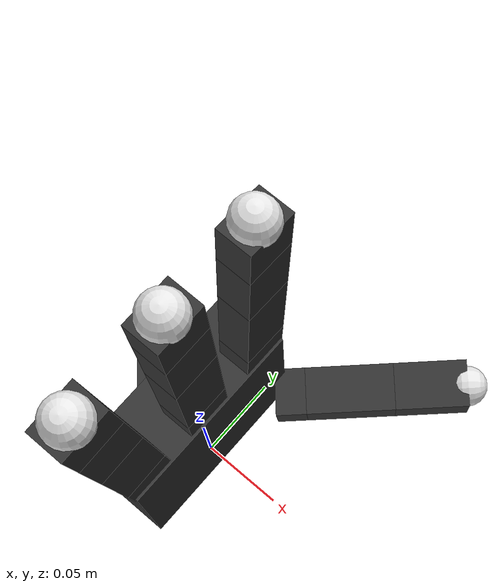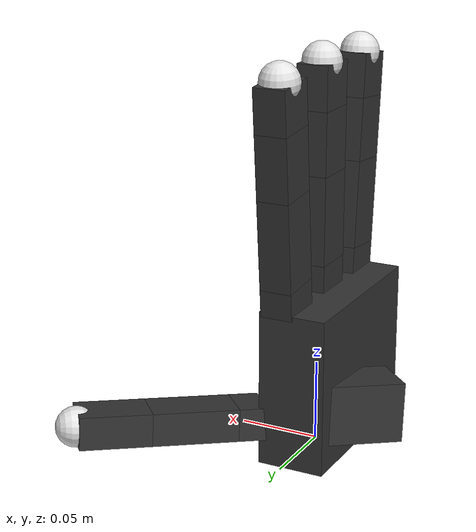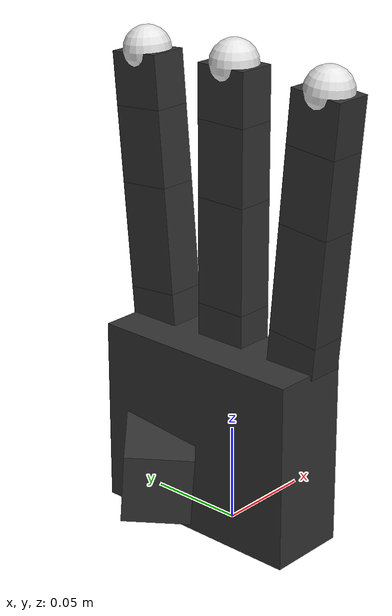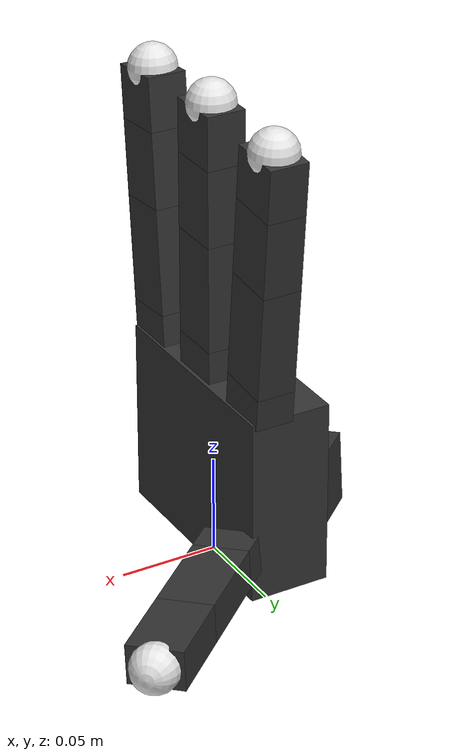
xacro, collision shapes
<?xml version="1.0"?>
<robot name="ahand" xmlns:xacro="http://ros.org/wiki/xacro">

  <link name="world">
    <origin xyz="0 0 0"/>
  </link>
  <xacro:include filename="$(find allegro_hand_description)/allegro_hand_description_right_melodic_franka.urdf.xacro"/>
  <xacro:allegro_hand_robot parent_link="world" xyz="0 0 0.1" rpy="0 0 0"/>

</robot>

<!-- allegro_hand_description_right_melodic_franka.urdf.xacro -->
<!-- |    This document was autogenerated by xacro from allegro_hand_description_right.xacro | -->
<!-- |    EDITING THIS FILE BY HAND IS NOT RECOMMENDED                                 | -->
<robot xmlns:xacro="http://www.ros.org/wiki/xacro" name="allegro_hand_right">
  <!-- ======================== BASE PARAMS ========================= -->
  <!-- ======================== FINGER PARAMS ======================== -->
  <!-- full height from joint to tip. when used,
    the radius of the finger tip sphere will be subtracted
    and one fixed link will be added for the tip. -->
  <!-- ========================= THUMB PARAMS ========================= -->
  <!-- ========================= LIMITS ========================= -->
 <xacro:macro name="allegro_hand_robot" params="parent_link xyz rpy">

  <joint name="base_joint" type="fixed">
      <parent link="${parent_link}"/>
      <child link="palm_link"/>
      <origin xyz="${xyz}" rpy="${rpy}"/>
  </joint>

  <link name="palm_link">
    <visual>
      <geometry>
        <mesh filename="package://allegro_hand_description/meshes/base_link.STL"/>
      </geometry>
      <origin rpy="0 0 0" xyz="0 0 0 "/>
      <material name="black">
        <color rgba="0.2 0.2 0.2 1"/>
      </material>
    </visual>
    <collision>
      <origin rpy="0 0 0" xyz="-0.009300 0 -0.0475"/>
      <geometry>
        <box size="0.0408 0.1130 0.095"/>
      </geometry>
    </collision>
    <inertial>
      <origin rpy="0 0 0" xyz="0 0 0.0475"/>
      <mass value="0.4154"/>
      <inertia ixx="1e-4" ixy="0.0" ixz="0.0" iyy="1e-4" iyz="0.0" izz="1e-4"/>
    </inertial>
  </link>
  <!-- FINGERS -->
  <!-- RIGHT HAND due to which finger is number 0 -->
  <!-- for LEFT HAND switch the sign of the **offset_origin_y** and **finger_angle_r** parameters-->

  <!-- Little finger -->
  <!-- [LINK 0, 4, 8] -->
  <link name="link_0">
    <visual>
      <geometry>
        <mesh filename="package://allegro_hand_description/meshes/link_0.0.STL"/>
      </geometry>
      <material name="black"/>
    </visual>
    <collision>
      <geometry>
        <box size="0.0196 0.0275 0.0164"/>
      </geometry>
      <origin rpy="0 0 0" xyz="0 0 0.0082"/>
    </collision>
    <inertial>
      <mass value="0.0119"/>
      <origin rpy="0 0 0" xyz="0 0 0"/>
      <inertia ixx="1.01666658333e-06" ixy="0.0" ixz="0.0" iyy="6.47677333333e-07" iyz="0.0" izz="1.01666658333e-06"/>
    </inertial>
  </link>
  <joint name="joint_0" type="revolute">
    <axis xyz="0 0 1"/>
    <limit effort="15" lower="-0.47" upper="0.47" velocity="7"/>
    <parent link="palm_link"/>
    <child link="link_0"/>
    <origin rpy="-0.08726646255 0 0" xyz="0 0.0435 -0.001542"/>
    <dynamics damping="3" friction="10"/>
  </joint>
  <!-- [LINK 1, 5, 9] -->
  <link name="link_1">
    <visual>
      <geometry>
        <mesh filename="package://allegro_hand_description/meshes/link_1.0.STL"/>
      </geometry>
      <material name="black"/>
    </visual>
    <collision>
      <geometry>
        <box size="0.0196 0.0275 0.054"/>
      </geometry>
      <origin rpy="0 0 0" xyz="0 0 0.027"/>
    </collision>
    <inertial>
      <mass value="0.065"/>
      <origin rpy="0 0 0" xyz="0 0 0"/>
      <inertia ixx="7.95654166667e-05" ixy="1.7199e-05" ixz="8.75875e-06" iyy="2.47088833333e-05" iyz="2.413125e-05" izz="7.95654166667e-05"/>
    </inertial>
  </link>
  <joint name="joint_1" type="revolute">
    <limit effort="15" lower="-0.196" upper="1.61" velocity="7"/>
    <axis xyz="0 1 0"/>
    <parent link="link_0"/>
    <child link="link_1"/>
    <origin xyz="0 0 0.0164"/>
    <dynamics damping="3" friction="5"/>
  </joint>
  <!-- [LINK 2, 6, 10]-->
  <link name="link_2">
    <visual>
      <geometry>
        <mesh filename="package://allegro_hand_description/meshes/link_2.0.STL"/>
      </geometry>
      <material name="black"/>
    </visual>
    <collision>
      <geometry>
        <box size="0.0196 0.0275 0.0384"/>
      </geometry>
      <origin rpy="0 0 0" xyz="0 0 0.0192"/>
    </collision>
    <inertial>
      <mass value="0.0355"/>
      <origin rpy="0 0 0" xyz="0 0 0"/>
      <inertia ixx="2.63979183333e-05" ixy="6.67968e-06" ixz="4.783625e-06" iyy="1.34948516667e-05" iyz="9.372e-06" izz="2.63979183333e-05"/>
    </inertial>
  </link>
  <joint name="joint_2" type="revolute">
    <axis xyz="0 1 0"/>
    <limit effort="15" lower="-0.174" upper="1.709" velocity="7"/>
    <parent link="link_1"/>
    <child link="link_2"/>
    <origin xyz="0 0 0.054"/>
    <dynamics damping="8" friction="10"/>
  </joint>
  <!-- [LINK 3, 7, 11] -->
  <link name="link_3">
    <visual>
      <geometry>
        <mesh filename="package://allegro_hand_description/meshes/link_3.0.STL"/>
      </geometry>
      <material name="black"/>
    </visual>
    <collision>
      <geometry>
        <box size="0.0196 0.0275 0.0267"/>
      </geometry>
      <origin rpy="0 0 0" xyz="0 0 0.01335"/>
    </collision>
    <inertial>
      <mass value="0.0096"/>
      <origin rpy="0 0 0" xyz="0 0 0"/>
      <inertia ixx="4.701248e-06" ixy="1.255968e-06" ixz="1.2936e-06" iyy="3.649312e-06" iyz="1.7622e-06" izz="4.701248e-06"/>
    </inertial>
  </link>
  <joint name="joint_3" type="revolute">
    <axis xyz="0 1 0"/>
    <limit effort="15" lower="-0.227" upper="1.618" velocity="7"/>
    <parent link="link_2"/>
    <child link="link_3"/>
    <origin xyz="0 0 0.0384"/>
    <dynamics damping="10" friction="12"/>
  </joint>
  <!-- [FINGER TIP] -->
  <link name="link_3_tip">
    <visual>
      <geometry>
        <mesh filename="package://allegro_hand_description/meshes/link_3.0_tip.STL"/>
      </geometry>
      <material name="white">
        <color rgba=".9 .9 .9 1"/>
      </material>
    </visual>
    <collision>
      <geometry>
        <sphere radius="0.012"/>
      </geometry>
    </collision>
    <inertial>
      <mass value="0.0168"/>
      <origin rpy="0 0 0" xyz="0 0 0"/>
      <inertia ixx="9.68e-07" ixy="0" ixz="0" iyy="9.68e-07" iyz="0" izz="9.68e-07"/>
    </inertial>
  </link>
  <joint name="joint_3_tip" type="fixed">
    <parent link="link_3"/>
    <child link="link_3_tip"/>
    <origin rpy="0 0 0" xyz="0 0 0.0267"/>
  </joint>
  <!-- [LINK 0, 4, 8] -->
  <link name="link_4">
    <visual>
      <geometry>
        <mesh filename="package://allegro_hand_description/meshes/link_0.0.STL"/>
      </geometry>
      <material name="black"/>
    </visual>
    <collision>
      <geometry>
        <box size="0.0196 0.0275 0.0164"/>
      </geometry>
      <origin rpy="0 0 0" xyz="0 0 0.0082"/>
    </collision>
    <inertial>
      <mass value="0.0119"/>
      <origin rpy="0 0 0" xyz="0 0 0"/>
      <inertia ixx="1.01666658333e-06" ixy="0.0" ixz="0.0" iyy="6.47677333333e-07" iyz="0.0" izz="1.01666658333e-06"/>
    </inertial>
  </link>
  <joint name="joint_4" type="revolute">
    <axis xyz="0 0 1"/>
    <limit effort="15" lower="-0.47" upper="0.47" velocity="7"/>
    <parent link="palm_link"/>
    <child link="link_4"/>
    <origin rpy="0.0 0 0" xyz="0 0 0.0007"/>
    <dynamics damping="3" friction="10"/>
  </joint>
  <!-- [LINK 1, 5, 9] -->
  <link name="link_5">
    <visual>
      <geometry>
        <mesh filename="package://allegro_hand_description/meshes/link_1.0.STL"/>
      </geometry>
      <material name="black"/>
    </visual>
    <collision>
      <geometry>
        <box size="0.0196 0.0275 0.054"/>
      </geometry>
      <origin rpy="0 0 0" xyz="0 0 0.027"/>
    </collision>
    <inertial>
      <mass value="0.065"/>
      <origin rpy="0 0 0" xyz="0 0 0"/>
      <inertia ixx="7.95654166667e-05" ixy="1.7199e-05" ixz="8.75875e-06" iyy="2.47088833333e-05" iyz="2.413125e-05" izz="7.95654166667e-05"/>
    </inertial>
  </link>
  <joint name="joint_5" type="revolute">
    <limit effort="15" lower="-0.196" upper="1.61" velocity="7"/>
    <axis xyz="0 1 0"/>
    <parent link="link_4"/>
    <child link="link_5"/>
    <origin xyz="0 0 0.0164"/>
    <dynamics damping="3" friction="5"/>
  </joint>
  <!-- [LINK 2, 6, 10]-->
  <link name="link_6">
    <visual>
      <geometry>
        <mesh filename="package://allegro_hand_description/meshes/link_2.0.STL"/>
      </geometry>
      <material name="black"/>
    </visual>
    <collision>
      <geometry>
        <box size="0.0196 0.0275 0.0384"/>
      </geometry>
      <origin rpy="0 0 0" xyz="0 0 0.0192"/>
    </collision>
    <inertial>
      <mass value="0.0355"/>
      <origin rpy="0 0 0" xyz="0 0 0"/>
      <inertia ixx="2.63979183333e-05" ixy="6.67968e-06" ixz="4.783625e-06" iyy="1.34948516667e-05" iyz="9.372e-06" izz="2.63979183333e-05"/>
    </inertial>
  </link>
  <joint name="joint_6" type="revolute">
    <axis xyz="0 1 0"/>
    <limit effort="15" lower="-0.174" upper="1.709" velocity="7"/>
    <parent link="link_5"/>
    <child link="link_6"/>
    <origin xyz="0 0 0.054"/>
    <dynamics damping="8" friction="10"/>
  </joint>
  <!-- [LINK 3, 7, 11] -->
  <link name="link_7">
    <visual>
      <geometry>
        <mesh filename="package://allegro_hand_description/meshes/link_3.0.STL"/>
      </geometry>
      <material name="black"/>
    </visual>
    <collision>
      <geometry>
        <box size="0.0196 0.0275 0.0267"/>
      </geometry>
      <origin rpy="0 0 0" xyz="0 0 0.01335"/>
    </collision>
    <inertial>
      <mass value="0.0096"/>
      <origin rpy="0 0 0" xyz="0 0 0"/>
      <inertia ixx="4.701248e-06" ixy="1.255968e-06" ixz="1.2936e-06" iyy="3.649312e-06" iyz="1.7622e-06" izz="4.701248e-06"/>
    </inertial>
  </link>
  <joint name="joint_7" type="revolute">
    <axis xyz="0 1 0"/>
    <limit effort="15" lower="-0.227" upper="1.618" velocity="7"/>
    <parent link="link_6"/>
    <child link="link_7"/>
    <origin xyz="0 0 0.0384"/>
    <dynamics damping="10" friction="12"/>
  </joint>
  <!-- [FINGER TIP] -->
  <link name="link_7_tip">
    <visual>
      <geometry>
        <mesh filename="package://allegro_hand_description/meshes/link_3.0_tip.STL"/>
      </geometry>
      <material name="white">
        <color rgba=".9 .9 .9 1"/>
      </material>
    </visual>
    <collision>
      <geometry>
        <sphere radius="0.012"/>
      </geometry>
    </collision>
    <inertial>
      <mass value="0.0168"/>
      <origin rpy="0 0 0" xyz="0 0 0"/>
      <inertia ixx="9.68e-07" ixy="0" ixz="0" iyy="9.68e-07" iyz="0" izz="9.68e-07"/>
    </inertial>
  </link>
  <joint name="joint_7_tip" type="fixed">
    <parent link="link_7"/>
    <child link="link_7_tip"/>
    <origin rpy="0 0 0" xyz="0 0 0.0267"/>
  </joint>
  <!-- [LINK 0, 4, 8] -->
  <link name="link_8">
    <visual>
      <geometry>
        <mesh filename="package://allegro_hand_description/meshes/link_0.0.STL"/>
      </geometry>
      <material name="black"/>
    </visual>
    <collision>
      <geometry>
        <box size="0.0196 0.0275 0.0164"/>
      </geometry>
      <origin rpy="0 0 0" xyz="0 0 0.0082"/>
    </collision>
    <inertial>
      <mass value="0.0119"/>
      <origin rpy="0 0 0" xyz="0 0 0"/>
      <inertia ixx="1.01666658333e-06" ixy="0.0" ixz="0.0" iyy="6.47677333333e-07" iyz="0.0" izz="1.01666658333e-06"/>
    </inertial>
  </link>
  <joint name="joint_8" type="revolute">
    <axis xyz="0 0 1"/>
    <limit effort="15" lower="-0.47" upper="0.47" velocity="7"/>
    <parent link="palm_link"/>
    <child link="link_8"/>
    <origin rpy="0.08726646255 0 0" xyz="0 -0.0435 -0.001542"/>
    <dynamics damping="3" friction="10"/>
  </joint>
  <!-- [LINK 1, 5, 9] -->
  <link name="link_9">
    <visual>
      <geometry>
        <mesh filename="package://allegro_hand_description/meshes/link_1.0.STL"/>
      </geometry>
      <material name="black"/>
    </visual>
    <collision>
      <geometry>
        <box size="0.0196 0.0275 0.054"/>
      </geometry>
      <origin rpy="0 0 0" xyz="0 0 0.027"/>
    </collision>
    <inertial>
      <mass value="0.065"/>
      <origin rpy="0 0 0" xyz="0 0 0"/>
      <inertia ixx="7.95654166667e-05" ixy="1.7199e-05" ixz="8.75875e-06" iyy="2.47088833333e-05" iyz="2.413125e-05" izz="7.95654166667e-05"/>
    </inertial>
  </link>
  <joint name="joint_9" type="revolute">
    <limit effort="15" lower="-0.196" upper="1.61" velocity="7"/>
    <axis xyz="0 1 0"/>
    <parent link="link_8"/>
    <child link="link_9"/>
    <origin xyz="0 0 0.0164"/>
    <dynamics damping="3" friction="5"/>
  </joint>
  <!-- [LINK 2, 6, 10]-->
  <link name="link_10">
    <visual>
      <geometry>
        <mesh filename="package://allegro_hand_description/meshes/link_2.0.STL"/>
      </geometry>
      <material name="black"/>
    </visual>
    <collision>
      <geometry>
        <box size="0.0196 0.0275 0.0384"/>
      </geometry>
      <origin rpy="0 0 0" xyz="0 0 0.0192"/>
    </collision>
    <inertial>
      <mass value="0.0355"/>
      <origin rpy="0 0 0" xyz="0 0 0"/>
      <inertia ixx="2.63979183333e-05" ixy="6.67968e-06" ixz="4.783625e-06" iyy="1.34948516667e-05" iyz="9.372e-06" izz="2.63979183333e-05"/>
    </inertial>
  </link>
  <joint name="joint_10" type="revolute">
    <axis xyz="0 1 0"/>
    <limit effort="15" lower="-0.174" upper="1.709" velocity="7"/>
    <parent link="link_9"/>
    <child link="link_10"/>
    <origin xyz="0 0 0.054"/>
    <dynamics damping="8" friction="10"/>
  </joint>
  <!-- [LINK 3, 7, 11] -->
  <link name="link_11">
    <visual>
      <geometry>
        <mesh filename="package://allegro_hand_description/meshes/link_3.0.STL"/>
      </geometry>
      <material name="black"/>
    </visual>
    <collision>
      <geometry>
        <box size="0.0196 0.0275 0.0267"/>
      </geometry>
      <origin rpy="0 0 0" xyz="0 0 0.01335"/>
    </collision>
    <inertial>
      <mass value="0.0096"/>
      <origin rpy="0 0 0" xyz="0 0 0"/>
      <inertia ixx="4.701248e-06" ixy="1.255968e-06" ixz="1.2936e-06" iyy="3.649312e-06" iyz="1.7622e-06" izz="4.701248e-06"/>
    </inertial>
  </link>
  <joint name="joint_11" type="revolute">
    <axis xyz="0 1 0"/>
    <limit effort="15" lower="-0.227" upper="1.618" velocity="7"/>
    <parent link="link_10"/>
    <child link="link_11"/>
    <origin xyz="0 0 0.0384"/>
    <dynamics damping="10" friction="12"/>
  </joint>
  <!-- [FINGER TIP] -->
  <link name="link_11_tip">
    <visual>
      <geometry>
        <mesh filename="package://allegro_hand_description/meshes/link_3.0_tip.STL"/>
      </geometry>
      <material name="white">
        <color rgba=".9 .9 .9 1"/>
      </material>
    </visual>
    <collision>
      <geometry>
        <sphere radius="0.012"/>
      </geometry>
    </collision>
    <inertial>
      <mass value="0.0168"/>
      <origin rpy="0 0 0" xyz="0 0 0"/>
      <inertia ixx="9.68e-07" ixy="0" ixz="0" iyy="9.68e-07" iyz="0" izz="9.68e-07"/>
    </inertial>
  </link>
  <joint name="joint_11_tip" type="fixed">
    <parent link="link_11"/>
    <child link="link_11_tip"/>
    <origin rpy="0 0 0" xyz="0 0 0.0267"/>
  </joint>

  <!-- THUMB -->
  <!-- [LINK 12] -->
  <link name="link_12">
    <visual>
      <geometry>
        <mesh filename="package://allegro_hand_description/meshes/link_12_0_right.STL"/>
      </geometry>
      <material name="black">
        <color rgba=".2 .2 .2 1"/>
      </material>
      <origin rpy="3.1415926518 0 0" xyz="0 0 0"/>
    </visual>
    <collision>
      <geometry>
        <box size="0.0358 0.034 0.0455"/>
      </geometry>
      <origin rpy="0 0 0" xyz="-0.0179 0.009 0.0145"/>
    </collision>
    <inertial>
      <mass value="0.0176"/>
      <origin rpy="0 0 0" xyz="0 0 0"/>
      <inertia ixx="1.89273333333e-5" ixy="7.16716e-06" ixz="5.35568e-06" iyy="1.43008213333e-05" iyz="6.8068e-06" izz="1.89273333333e-05"/>
    </inertial>
  </link>
  <joint name="joint_12" type="revolute">
    <axis xyz="-1 0 0"/>
    <limit effort="15" lower="0.263" upper="1.396" velocity="7"/>
    <parent link="palm_link"/>
    <child link="link_12"/>
    <origin rpy="0 -1.65806278845 1.5707963259" xyz="-0.0182 0.019333 -0.045987"/>
    <dynamics damping="3" friction="10"/>
  </joint>
  <!-- [LINK 13] -->
  <link name="link_13">
    <visual>
      <geometry>
        <mesh filename="package://allegro_hand_description/meshes/link_13.0.STL"/>
      </geometry>
      <material name="black">
        <color rgba=".2 .2 .2 1"/>
      </material>
    </visual>
    <collision>
      <geometry>
        <box size="0.0196 0.0275 0.0177"/>
      </geometry>
      <origin rpy="0 0 0" xyz="0 0 0.00885"/>
    </collision>
    <inertial>
      <mass value="0.0119"/>
      <origin rpy="0 0 0" xyz="0 0 0"/>
      <inertia ixx="4.24250866667e-06" ixy="1.032087e-06" ixz="1.603525e-06" iyy="4.52362633333e-06" iyz="1.44808125e-06" izz="4.24250866667e-06"/>
    </inertial>
  </link>
  <joint name="joint_13" type="revolute">
    <axis xyz="0 0 1"/>
    <limit effort="15" lower="-0.105" upper="1.163" velocity="7"/>
    <parent link="link_12"/>
    <child link="link_13"/>
    <origin xyz="-0.027 -0.005 -0.0399" rpy="0 3.14159 3.14159"/>
    <dynamics damping="3" friction="5"/>
  </joint>
  <!-- [LINK 14] -->
  <link name="link_14">
    <visual>
      <geometry>
        <mesh filename="package://allegro_hand_description/meshes/link_14.0.STL"/>
      </geometry>
      <material name="black">
                </material>
    </visual>
    <collision>
      <geometry>
        <box size="0.0196 0.0275 0.0514"/>
      </geometry>
      <origin rpy="0 0 0" xyz="0 0 0.0257"/>
    </collision>
    <inertial>
      <mass value="0.038"/>
      <origin rpy="0 0 0" xyz="0 0 0"/>
      <inertia ixx="4.30439933333e-05" ixy="9.57068e-06" ixz="5.1205e-06" iyy="1.44451933333e-05" iyz="1.342825e-05" izz="4.30439933333e-05"/>
    </inertial>
  </link>
  <joint name="joint_14" type="revolute">
    <axis xyz="0 1 0"/>
    <limit effort="15" lower="-0.189" upper="1.644" velocity="7"/>
    <parent link="link_13"/>
    <child link="link_14"/>
    <origin xyz="0 0 0.0177"/>
    <dynamics damping="3" friction="10"/>
  </joint>
  <!-- [LINK 15] -->
  <link name="link_15">
    <visual>
      <geometry>
        <mesh filename="package://allegro_hand_description/meshes/link_15.0.STL"/>
      </geometry>
      <material name="black">
                </material>
    </visual>
    <collision>
      <geometry>
        <box size="0.0196 0.0275 0.0423"/>
      </geometry>
      <origin rpy="0 0 0" xyz="0 0 0.02115"/>
    </collision>
    <inertial>
      <mass value="0.0388"/>
      <origin rpy="0 0 0" xyz="0 0 0"/>
      <inertia ixx="3.29223173333e-05" ixy="8.042076e-06" ixz="5.2283e-06" iyy="1.47493026667e-5" iyz="1.1283525e-5" izz="3.29223173333e-05"/>
    </inertial>
  </link>
  <joint name="joint_15" type="revolute">
    <axis xyz="0 1 0"/>
    <limit effort="15" lower="-0.162" upper="1.719" velocity="7"/>
    <parent link="link_14"/>
    <child link="link_15"/>
    <origin xyz="0 0 0.0514"/>
    <dynamics damping="3" friction="12"/>
  </joint>
  <!-- [FINGER TIP] -->
  <link name="link_15_tip">
    <visual>
      <geometry>
        <mesh filename="package://allegro_hand_description/meshes/link_15.0_tip.STL"/>
      </geometry>
      <material name="white">
        <color rgba=".9 .9 .9 1"/>
      </material>
    </visual>
    <collision>
      <geometry>
        <sphere radius="0.012"/>
      </geometry>
      <origin rpy="0 0 0" xyz="0 0 0"/>
    </collision>
    <inertial>
      <mass value="0.0168"/>
      <origin rpy="0 0 0" xyz="0 0 0"/>
      <inertia ixx="9.68e-07" ixy="0" ixz="0" iyy="9.68e-07" iyz="0" izz="9.68e-07"/>
    </inertial>
  </link>
  <joint name="joint_15_tip" type="fixed">
    <parent link="link_15"/>
    <child link="link_15_tip"/>
    <origin rpy="0 0 0" xyz="0 0 0.0423"/>
  </joint>
  <!-- THUMB MACRO -->
  <!-- END THUMB MACRO -->
  <!-- THREE FINGER MACRO -->
  <!-- [[END]] THREE FINGER MACRO -->
</xacro:macro>
</robot>
